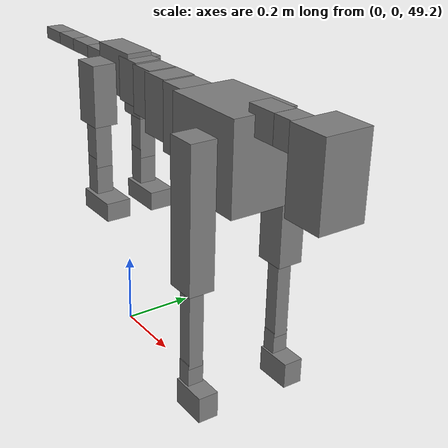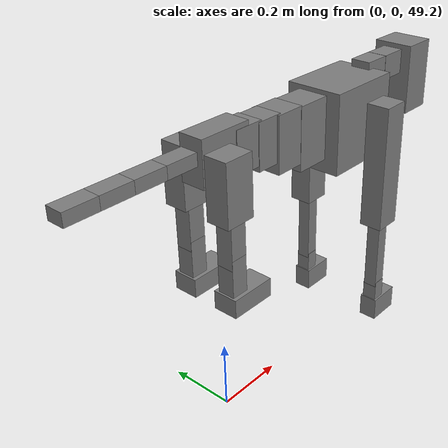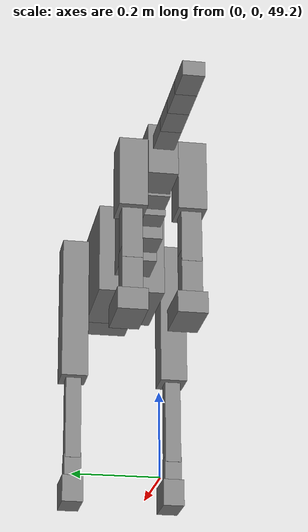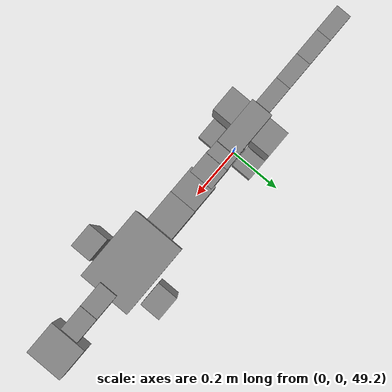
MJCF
<mujoco model="dog">

    <default>
        <joint armature="0.02" stiffness="1" damping="0.2" limited="true"/>
        <geom condim="3" friction="1 0.05 0.05" margin="0.01"/>
        <motor ctrllimited="true" ctrlrange="-1.0 1.0" forcelimited="true" gear="50"/>
    </default>

    <compiler inertiafromgeom="true" angle="radian"/>

    <option timestep="0.016" iterations="50" tolerance="1e-10" solver="Newton" jacobian="dense" cone="pyramidal"/>

    <size nconmax="20000" njmax="60000" nstack="5000000"/>
    <visual>
        <map force="0.1" zfar="30"/>
        <rgba haze="0.15 0.25 0.35 1"/>
        <quality shadowsize="2048"/>
        <global offwidth="800" offheight="800"/>
    </visual>

    <asset>
        <texture type="skybox" builtin="gradient" rgb1="0.3 0.5 0.7" rgb2="0 0 0" width="512" height="512"/>
        <texture name="texplane" type="2d" builtin="checker" rgb1=".2 .3 .4" rgb2=".1 0.15 0.2" width="512" height="512"
                 mark="cross" markrgb=".8 .8 .8"/>
        <texture name="texgeom" type="cube" builtin="flat" mark="cross" width="127" height="1278" rgb1="0.8 0.6 0.4"
                 rgb2="0.8 0.6 0.4" markrgb="1 1 1" random="0.01"/>

        <material name="matplane" reflectance="0.3" texture="texplane" texrepeat="1 1" texuniform="true"/>
        <material name="matgeom" texture="texgeom" texuniform="true" rgba="0.8 0.6 .4 1"/>
    </asset>

    <worldbody>
        <geom name="floor" pos="0 0 0" size="0 0 .25" type="plane" material="matplane" condim="3"/>

        <light directional="false" diffuse=".2 .2 .2" specular="0 0 0" pos="0 0 5" dir="0 0 -1" castshadow="false"/>
        <light mode="targetbodycom" target="torso" directional="false" diffuse=".8 .8 .8" specular="0.3 0.3 0.3"
               pos="0 0 4.0" dir="0 0 -1"/>

        <body name="root" pos="0 0 50">
            <freejoint name="root_1"/>
            <geom type="box" pos="0 0 -0.02" size="0.0774  0.0358  0.063" density="2030"/>

            <body name="spine1" pos="0.054 0 0">
                <joint name="spine1_y" axis="0 1 0" range="0 0.7" limited="true"/>
                <geom type="box" pos="0.02375 0 -0.03" size="0.04375  0.0375  0.05985" density="2030"/>

                <body name="spine2" pos="0.0612 0 0">
                    <joint name="spine2_y" axis="0 1 0" range="-0.15 0.15" limited="true"/>
                    <geom type="box" pos="0.03555  0  -0.04" size="0.04055  0.039  0.06615" density="2030"/>

                    <body name="spine3" pos="0.0730 0 0">
                        <joint name="spine3_y" axis="0 1 0" range="-0.15 0.15" limited="true"/>
                        <geom type="box" pos="0.03555  0  -0.057" size="0.04555  0.0445  0.081" density="2030"/>

                        <body name="spine4" pos="0.0780 0 0">
                            <joint name="spine4_y" axis="0 1 0" range="-0.15 0.15" limited="true"/>
                            <geom type="box" pos="0.05265  0  -0.07" size="0.05265  0.045  0.09135" density="2030"/>

                            <body name="torso" pos="0.1082 0 0">
                                <joint name="torso_y" axis="0 1 0" range="-0.15 0.15" limited="true"/>
                                <geom type="box" pos="0.11925  0  -0.085" size="0.11925  0.085  0.11745"
                                      density="2030"/>

                                <body name="neck1" pos="0.2160  0   0.0180">
                                    <joint name="neck1_y" axis="0 1 0" range="-1.2  -1" limited="true"/>
                                    <geom type="box" pos="0.0423  0  0" size="0.0423  0.03  0.036" density="2325"/>

                                    <body name="neck2" pos="0.0853  0  0">
                                        <joint name="neck2_y" axis="0 1 0" range="0.1  0" limited="true"/>
                                        <geom type="box" pos="0.0423  0  0" size="0.0423  0.03  0.036" density="2325"/>

                                        <body name="head" pos="0.0853  0  0">
                                            <joint name="head_y" axis="0 1 0" range="-0.3  -0.2" limited="true"/>
                                            <geom type="box" pos="0.0531  0  -0.055" size="0.0531  0.06  0.1044"
                                                  density="4030"/>

                                        </body>
                                    </body>
                                </body>

                                <body name="front_shoulder" pos="0.156  0   -0.0480">
                                    <joint name="front_shoulder_y" axis="0 1 0" range="-1 1.5" limited="true"/>
                                    <geom type="box" pos="0 0.13 -0.1609" size="0.0401  0.0343  0.1876" density="1158"/>
                                    <geom type="box" pos="0 -0.13 -0.1609" size="0.0401  0.0343  0.1876"
                                          density="1158"/>

                                    <body name="front_elbow" pos="0  0  -0.3218">
                                        <joint name="front_elbow_y" axis="0 1 0" range="-2 0" limited="true"/>
                                        <geom type="box" pos="0 0.13 -0.1201" size="0.0196  0.0200  0.1201"
                                              density="1081"/>
                                        <geom type="box" pos="0 -0.13 -0.1201" size="0.0196  0.0200  0.1201"
                                              density="1081"/>

                                        <body name="front_wrist" pos="0  0  -0.2403">
                                            <joint name="front_wrist_y" axis="0 1 0" range="-0.2 0" limited="true"/>
                                            <geom type="box" pos="0 0.13 -0.0310" size="0.0192  0.0214  0.0442"
                                                  density="1664"/>
                                            <geom type="box" pos="0 -0.13 -0.0310" size="0.0192  0.0214  0.0442"
                                                  density="1664"/>

                                            <body name="front_finger_end" pos="0  0  -0.0620">
                                                <joint name="front_finger_y" axis="0 1 0" range="-0.4 1"
                                                       limited="true"/>
                                                <geom type="box" pos="0.0268  0.13  -0.0195"
                                                      size="0.0492  0.0268  0.0345" density="1515"/>
                                                <geom type="box" pos="0.0268  -0.13  -0.0195"
                                                      size="0.0492  0.0268  0.0345" density="1515"/>

                                            </body>

                                        </body>
                                    </body>
                                </body>

                            </body>
                        </body>
                    </body>
                </body>
            </body>

            <body name="back_hip" pos="-0.03 0 -0.018">
                <joint name="back_hip_y" axis="0 1 0" range="-1.5 0.3" limited="true"/>
                <geom type="box" pos="0 0.07 -0.0628" size="0.0432  0.0339  0.0856" density="1154"/>
                <geom type="box" pos="0 -0.07 -0.0628" size="0.0432  0.0339  0.0856" density="1154"/>

                <body name="back_knee" pos="0  0  -0.1255">
                    <joint name="back_knee_y" axis="0 1 0" range="0 2.8" limited="true"/>
                    <geom type="box" pos="0 0.07 -0.0661" size="0.0246  0.0242  0.0816" density="1227"/>
                    <geom type="box" pos="0 -0.07 -0.0661" size="0.0246  0.0242  0.0816" density="1227"/>

                    <body name="back_ankle" pos="0  0  -0.1321">
                        <joint name="back_ankle_y" axis="0 1 0" range="-2.2 0" limited="true"/>
                        <geom type="box" pos="0 0.07 -0.0540" size="0.0244  0.0244  0.0653" density="1284"/>
                        <geom type="box" pos="0 -0.07 -0.0540" size="0.0244  0.0244  0.0653" density="1284"/>

                        <body name="back_toe_end" pos="0  0  -0.1080">
                            <joint name="back_toe_y" axis="0 1 0" range="-0.4 1" limited="true"/>
                            <geom type="box" pos="0.0357  0.07  -0.0114" size="0.0655  0.0357  0.0264" density="1515"/>
                            <geom type="box" pos="0.0357  -0.07  -0.0114" size="0.0655  0.0357  0.0264" density="1515"/>

                        </body>
                    </body>
                </body>
            </body>

            <body name="tail1" pos="-0.074 0 -0.006">
                <joint name="tail1_y" axis="0 1 0" range="-0.2 0.2" limited="true"/>
                <geom type="box" pos="-0.0536  0  0" size="0.045  0.025  0.0175" density="1587"/>

                <body name="tail2" pos="-0.09 0 0">
                    <joint name="tail2_y" axis="0 1 0" range="-0.2 0.2" limited="true"/>
                    <geom type="box" pos="-0.0536  0  0" size="0.045  0.025  0.0175" density="1587"/>

                    <body name="tail3" pos="-0.09 0 0">
                        <joint name="tail3_y" axis="0 1 0" range="-0.2 0.2" limited="true"/>
                        <geom type="box" pos="-0.0536  0  0" size="0.045  0.025  0.0175" density="1587"/>

                        <body name="tail4" pos="-0.09 0 0">
                            <joint name="tail4_y" axis="0 1 0" range="-0.2 0.2" limited="true"/>
                            <geom type="box" pos="-0.0536  0  0" size="0.045  0.025  0.0175" density="1587"/>

                        </body>
                    </body>
                </body>
            </body>
        </body>
    </worldbody>

    <actuator>
        <motor joint="spine1_y" forcerange="-150 150     "/>
        <motor joint="spine2_y" forcerange="-150 150     "/>
        <motor joint="spine3_y" forcerange="-150 150     "/>
        <motor joint="spine4_y" forcerange="-150 150     "/>
        <motor joint="torso_y" forcerange="-150 150     "/>
        <motor joint="neck1_y" forcerange="-100 100       "/>
        <motor joint="neck2_y" forcerange="-100 100       "/>
        <motor joint="head_y" forcerange="-150 150       "/>
        <motor joint="front_shoulder_y" forcerange="-186.31 142.40"/>
        <motor joint="front_elbow_y" forcerange="-126.29 119.07"/>
        <motor joint="front_wrist_y" forcerange="-92.79 78.23"/>
        <motor joint="front_finger_y" forcerange="-54.49 48.54"/>
        <motor joint="back_hip_y" forcerange="-269.75 381.78"/>
        <motor joint="back_knee_y" forcerange="-272.38 280.05"/>
        <motor joint="back_angle_y" forcerange="-182.13 108.57"/>
        <motor joint="back_toe_y" forcerange="-88.87 116.78"/>
        <motor joint="tail1_y" forcerange="-50 50     "/>
        <motor joint="tail2_y" forcerange="-50 50     "/>
        <motor joint="tail3_y" forcerange="-50 50     "/>
        <motor joint="tail4_y" forcerange="-50 50     "/>
    </actuator>
</mujoco>
